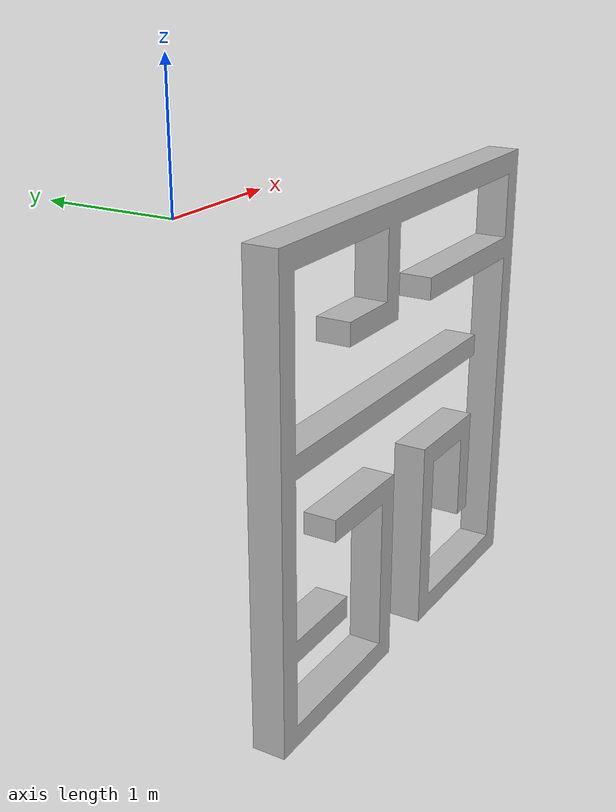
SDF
<?xml version="1.0" ?>
<sdf version="1.6">
  <model name="maze10">
    <pose>0 0 0 1.5708 0 0</pose>
    <static>true</static>
    <link name="link">
      <collision name="collision">
        <geometry>
          <mesh>
            <scale>0.001 0.001 0.001</scale>
            <uri>model://maze10/meshes/maze10.stl</uri>
          </mesh>
        </geometry>
      </collision>
      <visual name="visual">
        <geometry>

          <mesh>
            <scale>0.001 0.001 0.001</scale>
            <uri>model://maze10/meshes/maze10.stl</uri>
          </mesh>
        </geometry>
      </visual>
    </link>
  </model>
</sdf>
